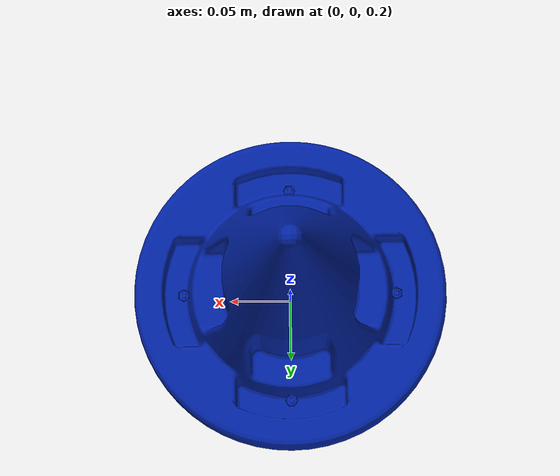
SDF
<?xml version="1.0"?>
<sdf version="1.5">
    <model name="Blue Mobile Goal">
      <pose>0 0 0.2  0 0 0</pose>

      <static>false</static>

      <link name="body">
        <visual name="visual">
          <geometry>
            <mesh><uri>file://BlueMobileGoal/BlueMobileGoal.dae</uri></mesh>
          </geometry>
        </visual>
	<collision name = "collision">
	<geometry>
<mesh><uri>file://Collisions/MobileGoalCollision.dae</uri></mesh>
	</geometry>
       </collision>

      </link>
    </model>
</sdf>
